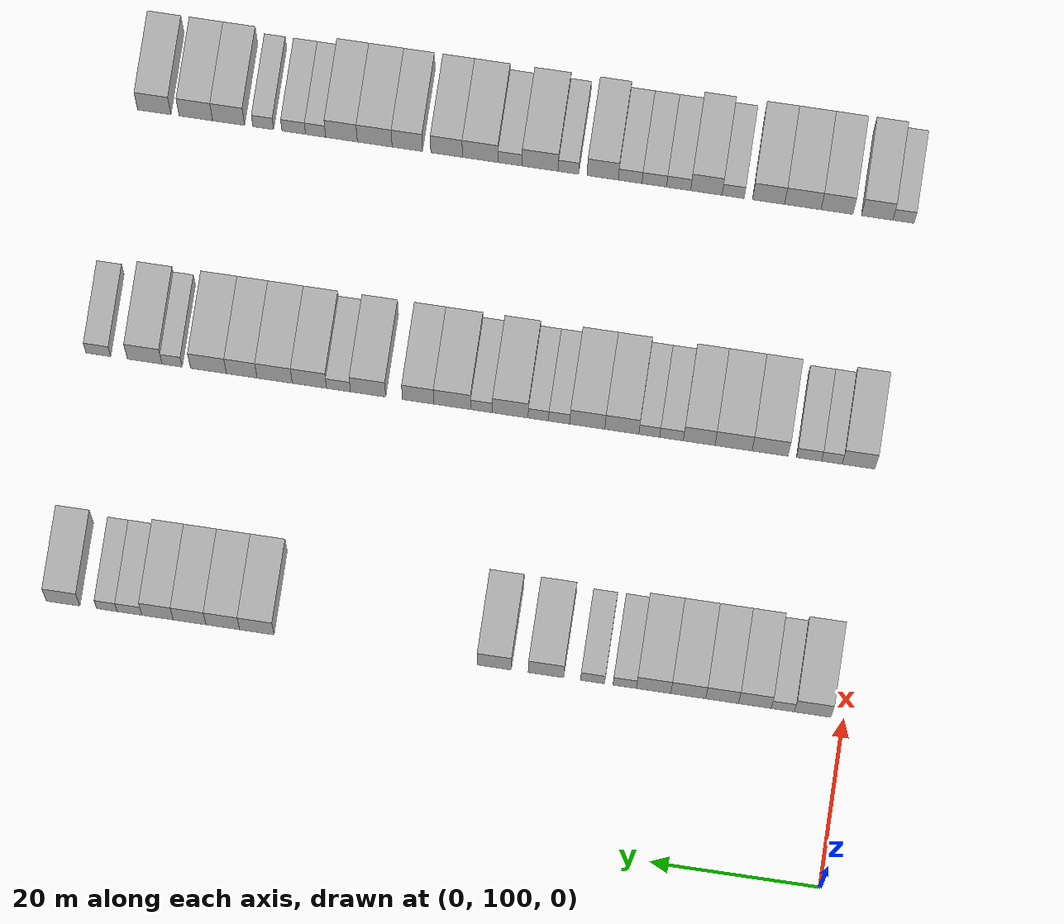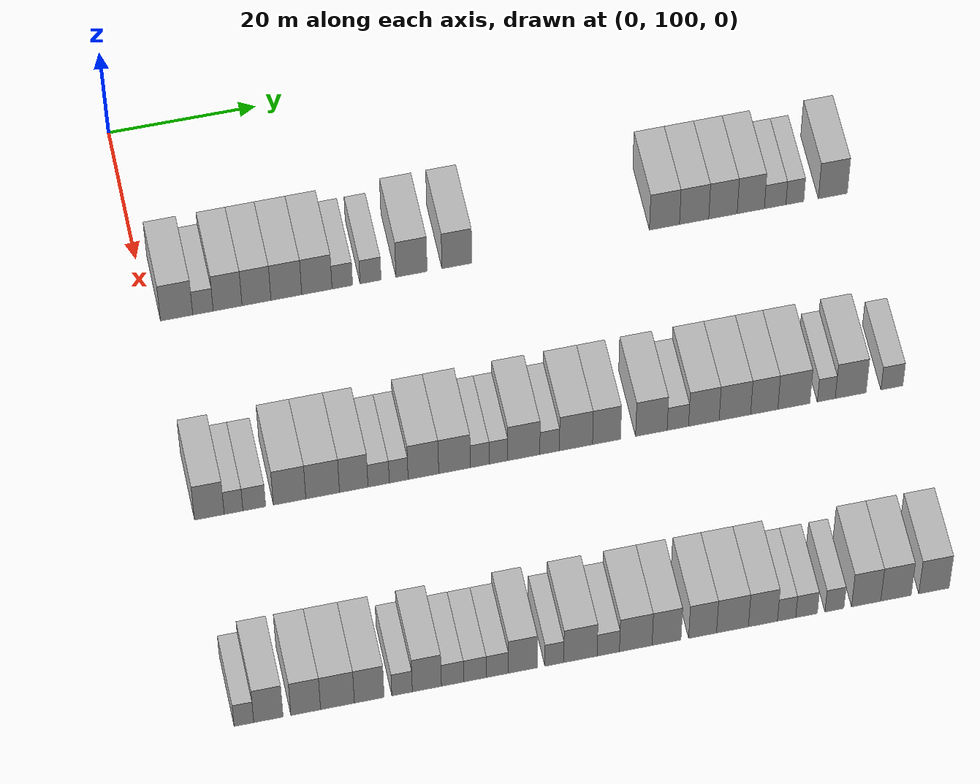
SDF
<sdf version="1.6">
 <world name="default">
  <model name="building_88">
   <static>1</static>
   <pose>25.0000 103.6721 0 0.000000 0.000000 0.000000</pose>
   <link name="link">
    <pose>0 0 4.50 0 0 0</pose>
    <collision name="collision"><geometry><box><size>10.0000 4.3162 9.0000</size></box></geometry></collision>
    <visual name="visual">
     <cast_shadows>0</cast_shadows>
     <geometry><box><size>10.0000 4.3162 9.0000</size></box></geometry>
     <material>
      <script>
       <uri>model://HANNAS_wall/materials/scripts</uri>
       <uri>model://HANNAS_wall/materials/textures</uri>
       <name>vrc/HANNAS_wall</name>
      </script>
     </material>
    </visual>
   </link>
  </model>
  <model name="building_89">
   <static>1</static>
   <pose>25.0000 107.2015 0 0.000000 0.000000 0.000000</pose>
   <link name="link">
    <pose>0 0 3.00 0 0 0</pose>
    <collision name="collision"><geometry><box><size>10.0000 2.7425 6.0000</size></box></geometry></collision>
    <visual name="visual">
     <cast_shadows>0</cast_shadows>
     <geometry><box><size>10.0000 2.7425 6.0000</size></box></geometry>
     <material>
      <script>
       <uri>model://HANNAS_wall/materials/scripts</uri>
       <uri>model://HANNAS_wall/materials/textures</uri>
       <name>vrc/HANNAS_wall</name>
      </script>
     </material>
    </visual>
   </link>
  </model>
  <model name="building_90">
   <static>1</static>
   <pose>25.0000 110.5030 0 0.000000 0.000000 0.000000</pose>
   <link name="link">
    <pose>0 0 4.50 0 0 0</pose>
    <collision name="collision"><geometry><box><size>10.0000 3.8606 9.0000</size></box></geometry></collision>
    <visual name="visual">
     <cast_shadows>0</cast_shadows>
     <geometry><box><size>10.0000 3.8606 9.0000</size></box></geometry>
     <material>
      <script>
       <uri>model://HANNAS_wall/materials/scripts</uri>
       <uri>model://HANNAS_wall/materials/textures</uri>
       <name>vrc/HANNAS_wall</name>
      </script>
     </material>
    </visual>
   </link>
  </model>
  <model name="building_91">
   <static>1</static>
   <pose>25.0000 114.3730 0 0.000000 0.000000 0.000000</pose>
   <link name="link">
    <pose>0 0 4.50 0 0 0</pose>
    <collision name="collision"><geometry><box><size>10.0000 3.8794 9.0000</size></box></geometry></collision>
    <visual name="visual">
     <cast_shadows>0</cast_shadows>
     <geometry><box><size>10.0000 3.8794 9.0000</size></box></geometry>
     <material>
      <script>
       <uri>model://HANNAS_wall/materials/scripts</uri>
       <uri>model://HANNAS_wall/materials/textures</uri>
       <name>vrc/HANNAS_wall</name>
      </script>
     </material>
    </visual>
   </link>
  </model>
  <model name="building_92">
   <static>1</static>
   <pose>25.0000 118.3794 0 0.000000 0.000000 0.000000</pose>
   <link name="link">
    <pose>0 0 4.50 0 0 0</pose>
    <collision name="collision"><geometry><box><size>10.0000 4.1334 9.0000</size></box></geometry></collision>
    <visual name="visual">
     <cast_shadows>0</cast_shadows>
     <geometry><box><size>10.0000 4.1334 9.0000</size></box></geometry>
     <material>
      <script>
       <uri>model://HANNAS_wall/materials/scripts</uri>
       <uri>model://HANNAS_wall/materials/textures</uri>
       <name>vrc/HANNAS_wall</name>
      </script>
     </material>
    </visual>
   </link>
  </model>
  <model name="building_93">
   <static>1</static>
   <pose>25.0000 122.4822 0 0.000000 0.000000 0.000000</pose>
   <link name="link">
    <pose>0 0 4.50 0 0 0</pose>
    <collision name="collision"><geometry><box><size>10.0000 4.0723 9.0000</size></box></geometry></collision>
    <visual name="visual">
     <cast_shadows>0</cast_shadows>
     <geometry><box><size>10.0000 4.0723 9.0000</size></box></geometry>
     <material>
      <script>
       <uri>model://HANNAS_wall/materials/scripts</uri>
       <uri>model://HANNAS_wall/materials/textures</uri>
       <name>vrc/HANNAS_wall</name>
      </script>
     </material>
    </visual>
   </link>
  </model>
  <model name="building_94">
   <static>1</static>
   <pose>25.0000 125.8988 0 0.000000 0.000000 0.000000</pose>
   <link name="link">
    <pose>0 0 3.00 0 0 0</pose>
    <collision name="collision"><geometry><box><size>10.0000 2.7609 6.0000</size></box></geometry></collision>
    <visual name="visual">
     <cast_shadows>0</cast_shadows>
     <geometry><box><size>10.0000 2.7609 6.0000</size></box></geometry>
     <material>
      <script>
       <uri>model://HANNAS_wall/materials/scripts</uri>
       <uri>model://HANNAS_wall/materials/textures</uri>
       <name>vrc/HANNAS_wall</name>
      </script>
     </material>
    </visual>
   </link>
  </model>
  <model name="building_95">
   <static>1</static>
   <pose>25.0000 129.6972 0 0.000000 0.000000 0.000000</pose>
   <link name="link">
    <pose>0 0 3.00 0 0 0</pose>
    <collision name="collision"><geometry><box><size>10.0000 2.8359 6.0000</size></box></geometry></collision>
    <visual name="visual">
     <cast_shadows>0</cast_shadows>
     <geometry><box><size>10.0000 2.8359 6.0000</size></box></geometry>
     <material>
      <script>
       <uri>model://HANNAS_wall/materials/scripts</uri>
       <uri>model://HANNAS_wall/materials/textures</uri>
       <name>vrc/HANNAS_wall</name>
      </script>
     </material>
    </visual>
   </link>
  </model>
  <model name="building_96">
   <static>1</static>
   <pose>25.0000 135.2191 0 0.000000 0.000000 0.000000</pose>
   <link name="link">
    <pose>0 0 4.50 0 0 0</pose>
    <collision name="collision"><geometry><box><size>10.0000 4.2078 9.0000</size></box></geometry></collision>
    <visual name="visual">
     <cast_shadows>0</cast_shadows>
     <geometry><box><size>10.0000 4.2078 9.0000</size></box></geometry>
     <material>
      <script>
       <uri>model://HANNAS_wall/materials/scripts</uri>
       <uri>model://HANNAS_wall/materials/textures</uri>
       <name>vrc/HANNAS_wall</name>
      </script>
     </material>
    </visual>
   </link>
  </model>
  <model name="building_97">
   <static>1</static>
   <pose>25.0000 141.3383 0 0.000000 0.000000 0.000000</pose>
   <link name="link">
    <pose>0 0 4.50 0 0 0</pose>
    <collision name="collision"><geometry><box><size>10.0000 4.0306 9.0000</size></box></geometry></collision>
    <visual name="visual">
     <cast_shadows>0</cast_shadows>
     <geometry><box><size>10.0000 4.0306 9.0000</size></box></geometry>
     <material>
      <script>
       <uri>model://HANNAS_wall/materials/scripts</uri>
       <uri>model://HANNAS_wall/materials/textures</uri>
       <name>vrc/HANNAS_wall</name>
      </script>
     </material>
    </visual>
   </link>
  </model>
  <model name="building_98">
   <static>1</static>
   <pose>25.0000 169.4876 0 0.000000 0.000000 0.000000</pose>
   <link name="link">
    <pose>0 0 4.50 0 0 0</pose>
    <collision name="collision"><geometry><box><size>10.0000 4.0893 9.0000</size></box></geometry></collision>
    <visual name="visual">
     <cast_shadows>0</cast_shadows>
     <geometry><box><size>10.0000 4.0893 9.0000</size></box></geometry>
     <material>
      <script>
       <uri>model://HANNAS_wall/materials/scripts</uri>
       <uri>model://HANNAS_wall/materials/textures</uri>
       <name>vrc/HANNAS_wall</name>
      </script>
     </material>
    </visual>
   </link>
  </model>
  <model name="building_99">
   <static>1</static>
   <pose>25.0000 173.5231 0 0.000000 0.000000 0.000000</pose>
   <link name="link">
    <pose>0 0 4.50 0 0 0</pose>
    <collision name="collision"><geometry><box><size>10.0000 3.9816 9.0000</size></box></geometry></collision>
    <visual name="visual">
     <cast_shadows>0</cast_shadows>
     <geometry><box><size>10.0000 3.9816 9.0000</size></box></geometry>
     <material>
      <script>
       <uri>model://HANNAS_wall/materials/scripts</uri>
       <uri>model://HANNAS_wall/materials/textures</uri>
       <name>vrc/HANNAS_wall</name>
      </script>
     </material>
    </visual>
   </link>
  </model>
  <model name="building_100">
   <static>1</static>
   <pose>25.0000 177.4533 0 0.000000 0.000000 0.000000</pose>
   <link name="link">
    <pose>0 0 4.50 0 0 0</pose>
    <collision name="collision"><geometry><box><size>10.0000 3.8789 9.0000</size></box></geometry></collision>
    <visual name="visual">
     <cast_shadows>0</cast_shadows>
     <geometry><box><size>10.0000 3.8789 9.0000</size></box></geometry>
     <material>
      <script>
       <uri>model://HANNAS_wall/materials/scripts</uri>
       <uri>model://HANNAS_wall/materials/textures</uri>
       <name>vrc/HANNAS_wall</name>
      </script>
     </material>
    </visual>
   </link>
  </model>
  <model name="building_101">
   <static>1</static>
   <pose>25.0000 181.2518 0 0.000000 0.000000 0.000000</pose>
   <link name="link">
    <pose>0 0 4.50 0 0 0</pose>
    <collision name="collision"><geometry><box><size>10.0000 3.7180 9.0000</size></box></geometry></collision>
    <visual name="visual">
     <cast_shadows>0</cast_shadows>
     <geometry><box><size>10.0000 3.7180 9.0000</size></box></geometry>
     <material>
      <script>
       <uri>model://HANNAS_wall/materials/scripts</uri>
       <uri>model://HANNAS_wall/materials/textures</uri>
       <name>vrc/HANNAS_wall</name>
      </script>
     </material>
    </visual>
   </link>
  </model>
  <model name="building_102">
   <static>1</static>
   <pose>25.0000 184.5844 0 0.000000 0.000000 0.000000</pose>
   <link name="link">
    <pose>0 0 3.00 0 0 0</pose>
    <collision name="collision"><geometry><box><size>10.0000 2.9474 6.0000</size></box></geometry></collision>
    <visual name="visual">
     <cast_shadows>0</cast_shadows>
     <geometry><box><size>10.0000 2.9474 6.0000</size></box></geometry>
     <material>
      <script>
       <uri>model://HANNAS_wall/materials/scripts</uri>
       <uri>model://HANNAS_wall/materials/textures</uri>
       <name>vrc/HANNAS_wall</name>
      </script>
     </material>
    </visual>
   </link>
  </model>
  <model name="building_103">
   <static>1</static>
   <pose>25.0000 187.2776 0 0.000000 0.000000 0.000000</pose>
   <link name="link">
    <pose>0 0 3.00 0 0 0</pose>
    <collision name="collision"><geometry><box><size>10.0000 2.4389 6.0000</size></box></geometry></collision>
    <visual name="visual">
     <cast_shadows>0</cast_shadows>
     <geometry><box><size>10.0000 2.4389 6.0000</size></box></geometry>
     <material>
      <script>
       <uri>model://HANNAS_wall/materials/scripts</uri>
       <uri>model://HANNAS_wall/materials/textures</uri>
       <name>vrc/HANNAS_wall</name>
      </script>
     </material>
    </visual>
   </link>
  </model>
  <model name="building_104">
   <static>1</static>
   <pose>25.0000 192.4817 0 0.000000 0.000000 0.000000</pose>
   <link name="link">
    <pose>0 0 4.50 0 0 0</pose>
    <collision name="collision"><geometry><box><size>10.0000 3.9693 9.0000</size></box></geometry></collision>
    <visual name="visual">
     <cast_shadows>0</cast_shadows>
     <geometry><box><size>10.0000 3.9693 9.0000</size></box></geometry>
     <material>
      <script>
       <uri>model://HANNAS_wall/materials/scripts</uri>
       <uri>model://HANNAS_wall/materials/textures</uri>
       <name>vrc/HANNAS_wall</name>
      </script>
     </material>
    </visual>
   </link>
  </model>
  <model name="building_225">
   <static>1</static>
   <pose>55.0000 102.4354 0 0.000000 0.000000 0.000000</pose>
   <link name="link">
    <pose>0 0 4.50 0 0 0</pose>
    <collision name="collision"><geometry><box><size>10.0000 3.9009 9.0000</size></box></geometry></collision>
    <visual name="visual">
     <cast_shadows>0</cast_shadows>
     <geometry><box><size>10.0000 3.9009 9.0000</size></box></geometry>
     <material>
      <script>
       <uri>model://HANNAS_wall/materials/scripts</uri>
       <uri>model://HANNAS_wall/materials/textures</uri>
       <name>vrc/HANNAS_wall</name>
      </script>
     </material>
    </visual>
   </link>
  </model>
  <model name="building_226">
   <static>1</static>
   <pose>55.0000 105.6128 0 0.000000 0.000000 0.000000</pose>
   <link name="link">
    <pose>0 0 3.00 0 0 0</pose>
    <collision name="collision"><geometry><box><size>10.0000 2.4539 6.0000</size></box></geometry></collision>
    <visual name="visual">
     <cast_shadows>0</cast_shadows>
     <geometry><box><size>10.0000 2.4539 6.0000</size></box></geometry>
     <material>
      <script>
       <uri>model://HANNAS_wall/materials/scripts</uri>
       <uri>model://HANNAS_wall/materials/textures</uri>
       <name>vrc/HANNAS_wall</name>
      </script>
     </material>
    </visual>
   </link>
  </model>
  <model name="building_227">
   <static>1</static>
   <pose>55.0000 108.3365 0 0.000000 0.000000 0.000000</pose>
   <link name="link">
    <pose>0 0 3.00 0 0 0</pose>
    <collision name="collision"><geometry><box><size>10.0000 2.9934 6.0000</size></box></geometry></collision>
    <visual name="visual">
     <cast_shadows>0</cast_shadows>
     <geometry><box><size>10.0000 2.9934 6.0000</size></box></geometry>
     <material>
      <script>
       <uri>model://HANNAS_wall/materials/scripts</uri>
       <uri>model://HANNAS_wall/materials/textures</uri>
       <name>vrc/HANNAS_wall</name>
      </script>
     </material>
    </visual>
   </link>
  </model>
  <model name="building_228">
   <static>1</static>
   <pose>55.0000 112.9729 0 0.000000 0.000000 0.000000</pose>
   <link name="link">
    <pose>0 0 4.50 0 0 0</pose>
    <collision name="collision"><geometry><box><size>10.0000 4.2794 9.0000</size></box></geometry></collision>
    <visual name="visual">
     <cast_shadows>0</cast_shadows>
     <geometry><box><size>10.0000 4.2794 9.0000</size></box></geometry>
     <material>
      <script>
       <uri>model://HANNAS_wall/materials/scripts</uri>
       <uri>model://HANNAS_wall/materials/textures</uri>
       <name>vrc/HANNAS_wall</name>
      </script>
     </material>
    </visual>
   </link>
  </model>
  <model name="building_229">
   <static>1</static>
   <pose>55.0000 117.3274 0 0.000000 0.000000 0.000000</pose>
   <link name="link">
    <pose>0 0 4.50 0 0 0</pose>
    <collision name="collision"><geometry><box><size>10.0000 4.4295 9.0000</size></box></geometry></collision>
    <visual name="visual">
     <cast_shadows>0</cast_shadows>
     <geometry><box><size>10.0000 4.4295 9.0000</size></box></geometry>
     <material>
      <script>
       <uri>model://HANNAS_wall/materials/scripts</uri>
       <uri>model://HANNAS_wall/materials/textures</uri>
       <name>vrc/HANNAS_wall</name>
      </script>
     </material>
    </visual>
   </link>
  </model>
  <model name="building_230">
   <static>1</static>
   <pose>55.0000 121.4233 0 0.000000 0.000000 0.000000</pose>
   <link name="link">
    <pose>0 0 4.50 0 0 0</pose>
    <collision name="collision"><geometry><box><size>10.0000 3.7623 9.0000</size></box></geometry></collision>
    <visual name="visual">
     <cast_shadows>0</cast_shadows>
     <geometry><box><size>10.0000 3.7623 9.0000</size></box></geometry>
     <material>
      <script>
       <uri>model://HANNAS_wall/materials/scripts</uri>
       <uri>model://HANNAS_wall/materials/textures</uri>
       <name>vrc/HANNAS_wall</name>
      </script>
     </material>
    </visual>
   </link>
  </model>
  <model name="building_231">
   <static>1</static>
   <pose>55.0000 124.7079 0 0.000000 0.000000 0.000000</pose>
   <link name="link">
    <pose>0 0 3.00 0 0 0</pose>
    <collision name="collision"><geometry><box><size>10.0000 2.8070 6.0000</size></box></geometry></collision>
    <visual name="visual">
     <cast_shadows>0</cast_shadows>
     <geometry><box><size>10.0000 2.8070 6.0000</size></box></geometry>
     <material>
      <script>
       <uri>model://HANNAS_wall/materials/scripts</uri>
       <uri>model://HANNAS_wall/materials/textures</uri>
       <name>vrc/HANNAS_wall</name>
      </script>
     </material>
    </visual>
   </link>
  </model>
  <model name="building_232">
   <static>1</static>
   <pose>55.0000 127.3528 0 0.000000 0.000000 0.000000</pose>
   <link name="link">
    <pose>0 0 3.00 0 0 0</pose>
    <collision name="collision"><geometry><box><size>10.0000 2.4827 6.0000</size></box></geometry></collision>
    <visual name="visual">
     <cast_shadows>0</cast_shadows>
     <geometry><box><size>10.0000 2.4827 6.0000</size></box></geometry>
     <material>
      <script>
       <uri>model://HANNAS_wall/materials/scripts</uri>
       <uri>model://HANNAS_wall/materials/textures</uri>
       <name>vrc/HANNAS_wall</name>
      </script>
     </material>
    </visual>
   </link>
  </model>
  <model name="building_233">
   <static>1</static>
   <pose>55.0000 130.6193 0 0.000000 0.000000 0.000000</pose>
   <link name="link">
    <pose>0 0 4.50 0 0 0</pose>
    <collision name="collision"><geometry><box><size>10.0000 4.0504 9.0000</size></box></geometry></collision>
    <visual name="visual">
     <cast_shadows>0</cast_shadows>
     <geometry><box><size>10.0000 4.0504 9.0000</size></box></geometry>
     <material>
      <script>
       <uri>model://HANNAS_wall/materials/scripts</uri>
       <uri>model://HANNAS_wall/materials/textures</uri>
       <name>vrc/HANNAS_wall</name>
      </script>
     </material>
    </visual>
   </link>
  </model>
  <model name="building_234">
   <static>1</static>
   <pose>55.0000 134.7379 0 0.000000 0.000000 0.000000</pose>
   <link name="link">
    <pose>0 0 4.50 0 0 0</pose>
    <collision name="collision"><geometry><box><size>10.0000 4.1867 9.0000</size></box></geometry></collision>
    <visual name="visual">
     <cast_shadows>0</cast_shadows>
     <geometry><box><size>10.0000 4.1867 9.0000</size></box></geometry>
     <material>
      <script>
       <uri>model://HANNAS_wall/materials/scripts</uri>
       <uri>model://HANNAS_wall/materials/textures</uri>
       <name>vrc/HANNAS_wall</name>
      </script>
     </material>
    </visual>
   </link>
  </model>
  <model name="building_235">
   <static>1</static>
   <pose>55.0000 138.0886 0 0.000000 0.000000 0.000000</pose>
   <link name="link">
    <pose>0 0 3.00 0 0 0</pose>
    <collision name="collision"><geometry><box><size>10.0000 2.5147 6.0000</size></box></geometry></collision>
    <visual name="visual">
     <cast_shadows>0</cast_shadows>
     <geometry><box><size>10.0000 2.5147 6.0000</size></box></geometry>
     <material>
      <script>
       <uri>model://HANNAS_wall/materials/scripts</uri>
       <uri>model://HANNAS_wall/materials/textures</uri>
       <name>vrc/HANNAS_wall</name>
      </script>
     </material>
    </visual>
   </link>
  </model>
  <model name="building_236">
   <static>1</static>
   <pose>55.0000 140.5717 0 0.000000 0.000000 0.000000</pose>
   <link name="link">
    <pose>0 0 3.00 0 0 0</pose>
    <collision name="collision"><geometry><box><size>10.0000 2.4517 6.0000</size></box></geometry></collision>
    <visual name="visual">
     <cast_shadows>0</cast_shadows>
     <geometry><box><size>10.0000 2.4517 6.0000</size></box></geometry>
     <material>
      <script>
       <uri>model://HANNAS_wall/materials/scripts</uri>
       <uri>model://HANNAS_wall/materials/textures</uri>
       <name>vrc/HANNAS_wall</name>
      </script>
     </material>
    </visual>
   </link>
  </model>
  <model name="building_237">
   <static>1</static>
   <pose>55.0000 143.9270 0 0.000000 0.000000 0.000000</pose>
   <link name="link">
    <pose>0 0 4.50 0 0 0</pose>
    <collision name="collision"><geometry><box><size>10.0000 4.2589 9.0000</size></box></geometry></collision>
    <visual name="visual">
     <cast_shadows>0</cast_shadows>
     <geometry><box><size>10.0000 4.2589 9.0000</size></box></geometry>
     <material>
      <script>
       <uri>model://HANNAS_wall/materials/scripts</uri>
       <uri>model://HANNAS_wall/materials/textures</uri>
       <name>vrc/HANNAS_wall</name>
      </script>
     </material>
    </visual>
   </link>
  </model>
  <model name="building_238">
   <static>1</static>
   <pose>55.0000 147.3557 0 0.000000 0.000000 0.000000</pose>
   <link name="link">
    <pose>0 0 3.00 0 0 0</pose>
    <collision name="collision"><geometry><box><size>10.0000 2.5984 6.0000</size></box></geometry></collision>
    <visual name="visual">
     <cast_shadows>0</cast_shadows>
     <geometry><box><size>10.0000 2.5984 6.0000</size></box></geometry>
     <material>
      <script>
       <uri>model://HANNAS_wall/materials/scripts</uri>
       <uri>model://HANNAS_wall/materials/textures</uri>
       <name>vrc/HANNAS_wall</name>
      </script>
     </material>
    </visual>
   </link>
  </model>
  <model name="building_239">
   <static>1</static>
   <pose>55.0000 150.8521 0 0.000000 0.000000 0.000000</pose>
   <link name="link">
    <pose>0 0 4.50 0 0 0</pose>
    <collision name="collision"><geometry><box><size>10.0000 4.3944 9.0000</size></box></geometry></collision>
    <visual name="visual">
     <cast_shadows>0</cast_shadows>
     <geometry><box><size>10.0000 4.3944 9.0000</size></box></geometry>
     <material>
      <script>
       <uri>model://HANNAS_wall/materials/scripts</uri>
       <uri>model://HANNAS_wall/materials/textures</uri>
       <name>vrc/HANNAS_wall</name>
      </script>
     </material>
    </visual>
   </link>
  </model>
  <model name="building_240">
   <static>1</static>
   <pose>55.0000 154.9145 0 0.000000 0.000000 0.000000</pose>
   <link name="link">
    <pose>0 0 4.50 0 0 0</pose>
    <collision name="collision"><geometry><box><size>10.0000 3.7304 9.0000</size></box></geometry></collision>
    <visual name="visual">
     <cast_shadows>0</cast_shadows>
     <geometry><box><size>10.0000 3.7304 9.0000</size></box></geometry>
     <material>
      <script>
       <uri>model://HANNAS_wall/materials/scripts</uri>
       <uri>model://HANNAS_wall/materials/textures</uri>
       <name>vrc/HANNAS_wall</name>
      </script>
     </material>
    </visual>
   </link>
  </model>
  <model name="building_241">
   <static>1</static>
   <pose>55.0000 160.8839 0 0.000000 0.000000 0.000000</pose>
   <link name="link">
    <pose>0 0 4.50 0 0 0</pose>
    <collision name="collision"><geometry><box><size>10.0000 4.2084 9.0000</size></box></geometry></collision>
    <visual name="visual">
     <cast_shadows>0</cast_shadows>
     <geometry><box><size>10.0000 4.2084 9.0000</size></box></geometry>
     <material>
      <script>
       <uri>model://HANNAS_wall/materials/scripts</uri>
       <uri>model://HANNAS_wall/materials/textures</uri>
       <name>vrc/HANNAS_wall</name>
      </script>
     </material>
    </visual>
   </link>
  </model>
  <model name="building_242">
   <static>1</static>
   <pose>55.0000 164.4166 0 0.000000 0.000000 0.000000</pose>
   <link name="link">
    <pose>0 0 3.00 0 0 0</pose>
    <collision name="collision"><geometry><box><size>10.0000 2.8570 6.0000</size></box></geometry></collision>
    <visual name="visual">
     <cast_shadows>0</cast_shadows>
     <geometry><box><size>10.0000 2.8570 6.0000</size></box></geometry>
     <material>
      <script>
       <uri>model://HANNAS_wall/materials/scripts</uri>
       <uri>model://HANNAS_wall/materials/textures</uri>
       <name>vrc/HANNAS_wall</name>
      </script>
     </material>
    </visual>
   </link>
  </model>
  <model name="building_243">
   <static>1</static>
   <pose>55.0000 167.8897 0 0.000000 0.000000 0.000000</pose>
   <link name="link">
    <pose>0 0 4.50 0 0 0</pose>
    <collision name="collision"><geometry><box><size>10.0000 4.0892 9.0000</size></box></geometry></collision>
    <visual name="visual">
     <cast_shadows>0</cast_shadows>
     <geometry><box><size>10.0000 4.0892 9.0000</size></box></geometry>
     <material>
      <script>
       <uri>model://HANNAS_wall/materials/scripts</uri>
       <uri>model://HANNAS_wall/materials/textures</uri>
       <name>vrc/HANNAS_wall</name>
      </script>
     </material>
    </visual>
   </link>
  </model>
  <model name="building_244">
   <static>1</static>
   <pose>55.0000 172.0382 0 0.000000 0.000000 0.000000</pose>
   <link name="link">
    <pose>0 0 4.50 0 0 0</pose>
    <collision name="collision"><geometry><box><size>10.0000 4.2076 9.0000</size></box></geometry></collision>
    <visual name="visual">
     <cast_shadows>0</cast_shadows>
     <geometry><box><size>10.0000 4.2076 9.0000</size></box></geometry>
     <material>
      <script>
       <uri>model://HANNAS_wall/materials/scripts</uri>
       <uri>model://HANNAS_wall/materials/textures</uri>
       <name>vrc/HANNAS_wall</name>
      </script>
     </material>
    </visual>
   </link>
  </model>
  <model name="building_245">
   <static>1</static>
   <pose>55.0000 175.9644 0 0.000000 0.000000 0.000000</pose>
   <link name="link">
    <pose>0 0 4.50 0 0 0</pose>
    <collision name="collision"><geometry><box><size>10.0000 3.6448 9.0000</size></box></geometry></collision>
    <visual name="visual">
     <cast_shadows>0</cast_shadows>
     <geometry><box><size>10.0000 3.6448 9.0000</size></box></geometry>
     <material>
      <script>
       <uri>model://HANNAS_wall/materials/scripts</uri>
       <uri>model://HANNAS_wall/materials/textures</uri>
       <name>vrc/HANNAS_wall</name>
      </script>
     </material>
    </visual>
   </link>
  </model>
  <model name="building_246">
   <static>1</static>
   <pose>55.0000 179.9346 0 0.000000 0.000000 0.000000</pose>
   <link name="link">
    <pose>0 0 4.50 0 0 0</pose>
    <collision name="collision"><geometry><box><size>10.0000 4.2957 9.0000</size></box></geometry></collision>
    <visual name="visual">
     <cast_shadows>0</cast_shadows>
     <geometry><box><size>10.0000 4.2957 9.0000</size></box></geometry>
     <material>
      <script>
       <uri>model://HANNAS_wall/materials/scripts</uri>
       <uri>model://HANNAS_wall/materials/textures</uri>
       <name>vrc/HANNAS_wall</name>
      </script>
     </material>
    </visual>
   </link>
  </model>
  <model name="building_247">
   <static>1</static>
   <pose>55.0000 184.2861 0 0.000000 0.000000 0.000000</pose>
   <link name="link">
    <pose>0 0 3.00 0 0 0</pose>
    <collision name="collision"><geometry><box><size>10.0000 2.4073 6.0000</size></box></geometry></collision>
    <visual name="visual">
     <cast_shadows>0</cast_shadows>
     <geometry><box><size>10.0000 2.4073 6.0000</size></box></geometry>
     <material>
      <script>
       <uri>model://HANNAS_wall/materials/scripts</uri>
       <uri>model://HANNAS_wall/materials/textures</uri>
       <name>vrc/HANNAS_wall</name>
      </script>
     </material>
    </visual>
   </link>
  </model>
  <model name="building_248">
   <static>1</static>
   <pose>55.0000 187.5607 0 0.000000 0.000000 0.000000</pose>
   <link name="link">
    <pose>0 0 4.50 0 0 0</pose>
    <collision name="collision"><geometry><box><size>10.0000 4.1419 9.0000</size></box></geometry></collision>
    <visual name="visual">
     <cast_shadows>0</cast_shadows>
     <geometry><box><size>10.0000 4.1419 9.0000</size></box></geometry>
     <material>
      <script>
       <uri>model://HANNAS_wall/materials/scripts</uri>
       <uri>model://HANNAS_wall/materials/textures</uri>
       <name>vrc/HANNAS_wall</name>
      </script>
     </material>
    </visual>
   </link>
  </model>
  <model name="building_249">
   <static>1</static>
   <pose>55.0000 193.1061 0 0.000000 0.000000 0.000000</pose>
   <link name="link">
    <pose>0 0 3.00 0 0 0</pose>
    <collision name="collision"><geometry><box><size>10.0000 2.9489 6.0000</size></box></geometry></collision>
    <visual name="visual">
     <cast_shadows>0</cast_shadows>
     <geometry><box><size>10.0000 2.9489 6.0000</size></box></geometry>
     <material>
      <script>
       <uri>model://HANNAS_wall/materials/scripts</uri>
       <uri>model://HANNAS_wall/materials/textures</uri>
       <name>vrc/HANNAS_wall</name>
      </script>
     </material>
    </visual>
   </link>
  </model>
  <model name="building_355">
   <static>1</static>
   <pose>85.0000 101.2579 0 0.000000 0.000000 0.000000</pose>
   <link name="link">
    <pose>0 0 3.00 0 0 0</pose>
    <collision name="collision"><geometry><box><size>10.0000 2.5381 6.0000</size></box></geometry></collision>
    <visual name="visual">
     <cast_shadows>0</cast_shadows>
     <geometry><box><size>10.0000 2.5381 6.0000</size></box></geometry>
     <material>
      <script>
       <uri>model://HANNAS_wall/materials/scripts</uri>
       <uri>model://HANNAS_wall/materials/textures</uri>
       <name>vrc/HANNAS_wall</name>
      </script>
     </material>
    </visual>
   </link>
  </model>
  <model name="building_356">
   <static>1</static>
   <pose>85.0000 104.4124 0 0.000000 0.000000 0.000000</pose>
   <link name="link">
    <pose>0 0 4.50 0 0 0</pose>
    <collision name="collision"><geometry><box><size>10.0000 3.7709 9.0000</size></box></geometry></collision>
    <visual name="visual">
     <cast_shadows>0</cast_shadows>
     <geometry><box><size>10.0000 3.7709 9.0000</size></box></geometry>
     <material>
      <script>
       <uri>model://HANNAS_wall/materials/scripts</uri>
       <uri>model://HANNAS_wall/materials/textures</uri>
       <name>vrc/HANNAS_wall</name>
      </script>
     </material>
    </visual>
   </link>
  </model>
  <model name="building_357">
   <static>1</static>
   <pose>85.0000 109.2153 0 0.000000 0.000000 0.000000</pose>
   <link name="link">
    <pose>0 0 4.50 0 0 0</pose>
    <collision name="collision"><geometry><box><size>10.0000 3.8349 9.0000</size></box></geometry></collision>
    <visual name="visual">
     <cast_shadows>0</cast_shadows>
     <geometry><box><size>10.0000 3.8349 9.0000</size></box></geometry>
     <material>
      <script>
       <uri>model://HANNAS_wall/materials/scripts</uri>
       <uri>model://HANNAS_wall/materials/textures</uri>
       <name>vrc/HANNAS_wall</name>
      </script>
     </material>
    </visual>
   </link>
  </model>
  <model name="building_358">
   <static>1</static>
   <pose>85.0000 113.3143 0 0.000000 0.000000 0.000000</pose>
   <link name="link">
    <pose>0 0 4.50 0 0 0</pose>
    <collision name="collision"><geometry><box><size>10.0000 4.3630 9.0000</size></box></geometry></collision>
    <visual name="visual">
     <cast_shadows>0</cast_shadows>
     <geometry><box><size>10.0000 4.3630 9.0000</size></box></geometry>
     <material>
      <script>
       <uri>model://HANNAS_wall/materials/scripts</uri>
       <uri>model://HANNAS_wall/materials/textures</uri>
       <name>vrc/HANNAS_wall</name>
      </script>
     </material>
    </visual>
   </link>
  </model>
  <model name="building_359">
   <static>1</static>
   <pose>85.0000 117.4173 0 0.000000 0.000000 0.000000</pose>
   <link name="link">
    <pose>0 0 4.50 0 0 0</pose>
    <collision name="collision"><geometry><box><size>10.0000 3.8431 9.0000</size></box></geometry></collision>
    <visual name="visual">
     <cast_shadows>0</cast_shadows>
     <geometry><box><size>10.0000 3.8431 9.0000</size></box></geometry>
     <material>
      <script>
       <uri>model://HANNAS_wall/materials/scripts</uri>
       <uri>model://HANNAS_wall/materials/textures</uri>
       <name>vrc/HANNAS_wall</name>
      </script>
     </material>
    </visual>
   </link>
  </model>
  <model name="building_360">
   <static>1</static>
   <pose>85.0000 121.6644 0 0.000000 0.000000 0.000000</pose>
   <link name="link">
    <pose>0 0 3.00 0 0 0</pose>
    <collision name="collision"><geometry><box><size>10.0000 2.6510 6.0000</size></box></geometry></collision>
    <visual name="visual">
     <cast_shadows>0</cast_shadows>
     <geometry><box><size>10.0000 2.6510 6.0000</size></box></geometry>
     <material>
      <script>
       <uri>model://HANNAS_wall/materials/scripts</uri>
       <uri>model://HANNAS_wall/materials/textures</uri>
       <name>vrc/HANNAS_wall</name>
      </script>
     </material>
    </visual>
   </link>
  </model>
  <model name="building_361">
   <static>1</static>
   <pose>85.0000 124.8728 0 0.000000 0.000000 0.000000</pose>
   <link name="link">
    <pose>0 0 4.50 0 0 0</pose>
    <collision name="collision"><geometry><box><size>10.0000 3.7658 9.0000</size></box></geometry></collision>
    <visual name="visual">
     <cast_shadows>0</cast_shadows>
     <geometry><box><size>10.0000 3.7658 9.0000</size></box></geometry>
     <material>
      <script>
       <uri>model://HANNAS_wall/materials/scripts</uri>
       <uri>model://HANNAS_wall/materials/textures</uri>
       <name>vrc/HANNAS_wall</name>
      </script>
     </material>
    </visual>
   </link>
  </model>
  <model name="building_362">
   <static>1</static>
   <pose>85.0000 128.1988 0 0.000000 0.000000 0.000000</pose>
   <link name="link">
    <pose>0 0 3.00 0 0 0</pose>
    <collision name="collision"><geometry><box><size>10.0000 2.8862 6.0000</size></box></geometry></collision>
    <visual name="visual">
     <cast_shadows>0</cast_shadows>
     <geometry><box><size>10.0000 2.8862 6.0000</size></box></geometry>
     <material>
      <script>
       <uri>model://HANNAS_wall/materials/scripts</uri>
       <uri>model://HANNAS_wall/materials/textures</uri>
       <name>vrc/HANNAS_wall</name>
      </script>
     </material>
    </visual>
   </link>
  </model>
  <model name="building_363">
   <static>1</static>
   <pose>85.0000 131.1191 0 0.000000 0.000000 0.000000</pose>
   <link name="link">
    <pose>0 0 3.00 0 0 0</pose>
    <collision name="collision"><geometry><box><size>10.0000 2.9544 6.0000</size></box></geometry></collision>
    <visual name="visual">
     <cast_shadows>0</cast_shadows>
     <geometry><box><size>10.0000 2.9544 6.0000</size></box></geometry>
     <material>
      <script>
       <uri>model://HANNAS_wall/materials/scripts</uri>
       <uri>model://HANNAS_wall/materials/textures</uri>
       <name>vrc/HANNAS_wall</name>
      </script>
     </material>
    </visual>
   </link>
  </model>
  <model name="building_364">
   <static>1</static>
   <pose>85.0000 134.0162 0 0.000000 0.000000 0.000000</pose>
   <link name="link">
    <pose>0 0 3.00 0 0 0</pose>
    <collision name="collision"><geometry><box><size>10.0000 2.8397 6.0000</size></box></geometry></collision>
    <visual name="visual">
     <cast_shadows>0</cast_shadows>
     <geometry><box><size>10.0000 2.8397 6.0000</size></box></geometry>
     <material>
      <script>
       <uri>model://HANNAS_wall/materials/scripts</uri>
       <uri>model://HANNAS_wall/materials/textures</uri>
       <name>vrc/HANNAS_wall</name>
      </script>
     </material>
    </visual>
   </link>
  </model>
  <model name="building_365">
   <static>1</static>
   <pose>85.0000 137.3111 0 0.000000 0.000000 0.000000</pose>
   <link name="link">
    <pose>0 0 4.50 0 0 0</pose>
    <collision name="collision"><geometry><box><size>10.0000 3.7501 9.0000</size></box></geometry></collision>
    <visual name="visual">
     <cast_shadows>0</cast_shadows>
     <geometry><box><size>10.0000 3.7501 9.0000</size></box></geometry>
     <material>
      <script>
       <uri>model://HANNAS_wall/materials/scripts</uri>
       <uri>model://HANNAS_wall/materials/textures</uri>
       <name>vrc/HANNAS_wall</name>
      </script>
     </material>
    </visual>
   </link>
  </model>
  <model name="building_366">
   <static>1</static>
   <pose>85.0000 141.4146 0 0.000000 0.000000 0.000000</pose>
   <link name="link">
    <pose>0 0 3.00 0 0 0</pose>
    <collision name="collision"><geometry><box><size>10.0000 2.4568 6.0000</size></box></geometry></collision>
    <visual name="visual">
     <cast_shadows>0</cast_shadows>
     <geometry><box><size>10.0000 2.4568 6.0000</size></box></geometry>
     <material>
      <script>
       <uri>model://HANNAS_wall/materials/scripts</uri>
       <uri>model://HANNAS_wall/materials/textures</uri>
       <name>vrc/HANNAS_wall</name>
      </script>
     </material>
    </visual>
   </link>
  </model>
  <model name="building_367">
   <static>1</static>
   <pose>85.0000 144.8156 0 0.000000 0.000000 0.000000</pose>
   <link name="link">
    <pose>0 0 4.50 0 0 0</pose>
    <collision name="collision"><geometry><box><size>10.0000 4.3451 9.0000</size></box></geometry></collision>
    <visual name="visual">
     <cast_shadows>0</cast_shadows>
     <geometry><box><size>10.0000 4.3451 9.0000</size></box></geometry>
     <material>
      <script>
       <uri>model://HANNAS_wall/materials/scripts</uri>
       <uri>model://HANNAS_wall/materials/textures</uri>
       <name>vrc/HANNAS_wall</name>
      </script>
     </material>
    </visual>
   </link>
  </model>
  <model name="building_368">
   <static>1</static>
   <pose>85.0000 148.4433 0 0.000000 0.000000 0.000000</pose>
   <link name="link">
    <pose>0 0 3.00 0 0 0</pose>
    <collision name="collision"><geometry><box><size>10.0000 2.9105 6.0000</size></box></geometry></collision>
    <visual name="visual">
     <cast_shadows>0</cast_shadows>
     <geometry><box><size>10.0000 2.9105 6.0000</size></box></geometry>
     <material>
      <script>
       <uri>model://HANNAS_wall/materials/scripts</uri>
       <uri>model://HANNAS_wall/materials/textures</uri>
       <name>vrc/HANNAS_wall</name>
      </script>
     </material>
    </visual>
   </link>
  </model>
  <model name="building_369">
   <static>1</static>
   <pose>85.0000 152.0268 0 0.000000 0.000000 0.000000</pose>
   <link name="link">
    <pose>0 0 4.50 0 0 0</pose>
    <collision name="collision"><geometry><box><size>10.0000 4.2564 9.0000</size></box></geometry></collision>
    <visual name="visual">
     <cast_shadows>0</cast_shadows>
     <geometry><box><size>10.0000 4.2564 9.0000</size></box></geometry>
     <material>
      <script>
       <uri>model://HANNAS_wall/materials/scripts</uri>
       <uri>model://HANNAS_wall/materials/textures</uri>
       <name>vrc/HANNAS_wall</name>
      </script>
     </material>
    </visual>
   </link>
  </model>
  <model name="building_370">
   <static>1</static>
   <pose>85.0000 156.0450 0 0.000000 0.000000 0.000000</pose>
   <link name="link">
    <pose>0 0 4.50 0 0 0</pose>
    <collision name="collision"><geometry><box><size>10.0000 3.7801 9.0000</size></box></geometry></collision>
    <visual name="visual">
     <cast_shadows>0</cast_shadows>
     <geometry><box><size>10.0000 3.7801 9.0000</size></box></geometry>
     <material>
      <script>
       <uri>model://HANNAS_wall/materials/scripts</uri>
       <uri>model://HANNAS_wall/materials/textures</uri>
       <name>vrc/HANNAS_wall</name>
      </script>
     </material>
    </visual>
   </link>
  </model>
  <model name="building_371">
   <static>1</static>
   <pose>85.0000 160.7605 0 0.000000 0.000000 0.000000</pose>
   <link name="link">
    <pose>0 0 4.50 0 0 0</pose>
    <collision name="collision"><geometry><box><size>10.0000 3.6509 9.0000</size></box></geometry></collision>
    <visual name="visual">
     <cast_shadows>0</cast_shadows>
     <geometry><box><size>10.0000 3.6509 9.0000</size></box></geometry>
     <material>
      <script>
       <uri>model://HANNAS_wall/materials/scripts</uri>
       <uri>model://HANNAS_wall/materials/textures</uri>
       <name>vrc/HANNAS_wall</name>
      </script>
     </material>
    </visual>
   </link>
  </model>
  <model name="building_372">
   <static>1</static>
   <pose>85.0000 164.6735 0 0.000000 0.000000 0.000000</pose>
   <link name="link">
    <pose>0 0 4.50 0 0 0</pose>
    <collision name="collision"><geometry><box><size>10.0000 4.1752 9.0000</size></box></geometry></collision>
    <visual name="visual">
     <cast_shadows>0</cast_shadows>
     <geometry><box><size>10.0000 4.1752 9.0000</size></box></geometry>
     <material>
      <script>
       <uri>model://HANNAS_wall/materials/scripts</uri>
       <uri>model://HANNAS_wall/materials/textures</uri>
       <name>vrc/HANNAS_wall</name>
      </script>
     </material>
    </visual>
   </link>
  </model>
  <model name="building_373">
   <static>1</static>
   <pose>85.0000 168.6642 0 0.000000 0.000000 0.000000</pose>
   <link name="link">
    <pose>0 0 4.50 0 0 0</pose>
    <collision name="collision"><geometry><box><size>10.0000 3.8061 9.0000</size></box></geometry></collision>
    <visual name="visual">
     <cast_shadows>0</cast_shadows>
     <geometry><box><size>10.0000 3.8061 9.0000</size></box></geometry>
     <material>
      <script>
       <uri>model://HANNAS_wall/materials/scripts</uri>
       <uri>model://HANNAS_wall/materials/textures</uri>
       <name>vrc/HANNAS_wall</name>
      </script>
     </material>
    </visual>
   </link>
  </model>
  <model name="building_374">
   <static>1</static>
   <pose>85.0000 171.7726 0 0.000000 0.000000 0.000000</pose>
   <link name="link">
    <pose>0 0 3.00 0 0 0</pose>
    <collision name="collision"><geometry><box><size>10.0000 2.4106 6.0000</size></box></geometry></collision>
    <visual name="visual">
     <cast_shadows>0</cast_shadows>
     <geometry><box><size>10.0000 2.4106 6.0000</size></box></geometry>
     <material>
      <script>
       <uri>model://HANNAS_wall/materials/scripts</uri>
       <uri>model://HANNAS_wall/materials/textures</uri>
       <name>vrc/HANNAS_wall</name>
      </script>
     </material>
    </visual>
   </link>
  </model>
  <model name="building_375">
   <static>1</static>
   <pose>85.0000 174.3969 0 0.000000 0.000000 0.000000</pose>
   <link name="link">
    <pose>0 0 3.00 0 0 0</pose>
    <collision name="collision"><geometry><box><size>10.0000 2.8380 6.0000</size></box></geometry></collision>
    <visual name="visual">
     <cast_shadows>0</cast_shadows>
     <geometry><box><size>10.0000 2.8380 6.0000</size></box></geometry>
     <material>
      <script>
       <uri>model://HANNAS_wall/materials/scripts</uri>
       <uri>model://HANNAS_wall/materials/textures</uri>
       <name>vrc/HANNAS_wall</name>
      </script>
     </material>
    </visual>
   </link>
  </model>
  <model name="building_376">
   <static>1</static>
   <pose>85.0000 178.0625 0 0.000000 0.000000 0.000000</pose>
   <link name="link">
    <pose>0 0 3.00 0 0 0</pose>
    <collision name="collision"><geometry><box><size>10.0000 2.4932 6.0000</size></box></geometry></collision>
    <visual name="visual">
     <cast_shadows>0</cast_shadows>
     <geometry><box><size>10.0000 2.4932 6.0000</size></box></geometry>
     <material>
      <script>
       <uri>model://HANNAS_wall/materials/scripts</uri>
       <uri>model://HANNAS_wall/materials/textures</uri>
       <name>vrc/HANNAS_wall</name>
      </script>
     </material>
    </visual>
   </link>
  </model>
  <model name="building_377">
   <static>1</static>
   <pose>85.0000 182.2347 0 0.000000 0.000000 0.000000</pose>
   <link name="link">
    <pose>0 0 4.50 0 0 0</pose>
    <collision name="collision"><geometry><box><size>10.0000 3.8513 9.0000</size></box></geometry></collision>
    <visual name="visual">
     <cast_shadows>0</cast_shadows>
     <geometry><box><size>10.0000 3.8513 9.0000</size></box></geometry>
     <material>
      <script>
       <uri>model://HANNAS_wall/materials/scripts</uri>
       <uri>model://HANNAS_wall/materials/textures</uri>
       <name>vrc/HANNAS_wall</name>
      </script>
     </material>
    </visual>
   </link>
  </model>
  <model name="building_378">
   <static>1</static>
   <pose>85.0000 186.1661 0 0.000000 0.000000 0.000000</pose>
   <link name="link">
    <pose>0 0 4.50 0 0 0</pose>
    <collision name="collision"><geometry><box><size>10.0000 4.0114 9.0000</size></box></geometry></collision>
    <visual name="visual">
     <cast_shadows>0</cast_shadows>
     <geometry><box><size>10.0000 4.0114 9.0000</size></box></geometry>
     <material>
      <script>
       <uri>model://HANNAS_wall/materials/scripts</uri>
       <uri>model://HANNAS_wall/materials/textures</uri>
       <name>vrc/HANNAS_wall</name>
      </script>
     </material>
    </visual>
   </link>
  </model>
  <model name="building_379">
   <static>1</static>
   <pose>85.0000 191.1740 0 0.000000 0.000000 0.000000</pose>
   <link name="link">
    <pose>0 0 4.50 0 0 0</pose>
    <collision name="collision"><geometry><box><size>10.0000 4.0044 9.0000</size></box></geometry></collision>
    <visual name="visual">
     <cast_shadows>0</cast_shadows>
     <geometry><box><size>10.0000 4.0044 9.0000</size></box></geometry>
     <material>
      <script>
       <uri>model://HANNAS_wall/materials/scripts</uri>
       <uri>model://HANNAS_wall/materials/textures</uri>
       <name>vrc/HANNAS_wall</name>
      </script>
     </material>
    </visual>
   </link>
  </model>
 </world>
</sdf>
